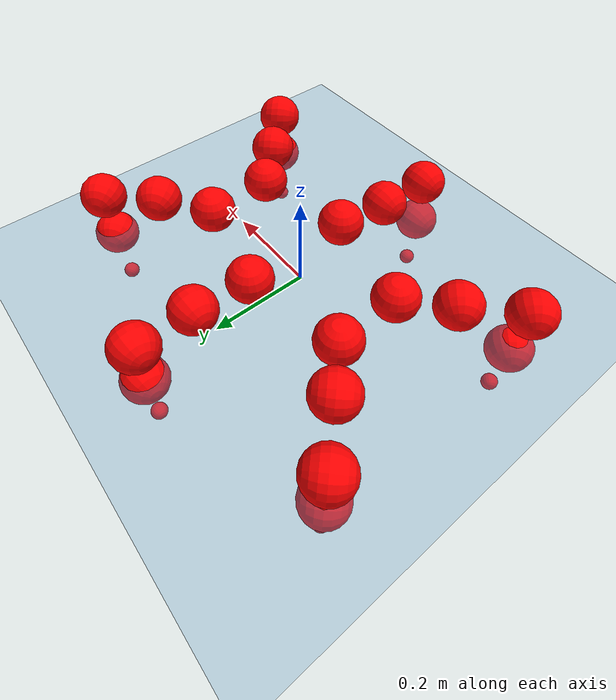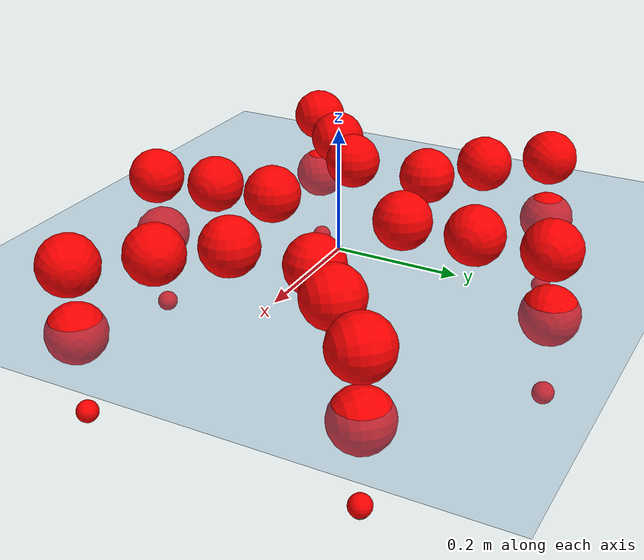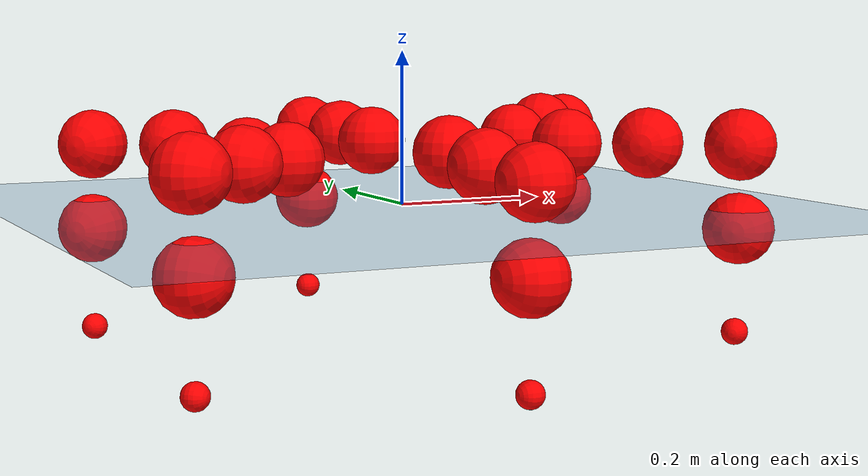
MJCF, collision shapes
<mujoco model="Golem">
  <compiler angle="radian" assetdir="assets" balanceinertia="true" inertiafromgeom="false"/>

  <option timestep="0.005" density="1.2" viscosity="2e-05"/>

  <size nkey="1"/>

  <visual>
    <quality shadowsize="8192"/>
    <map shadowclip="0.5"/>
  </visual>

  <default>
    <default class="/">
      <joint armature="0.01" damping="0.01" frictionloss="0.01"/>
      <geom contype="0" conaffinity="0" group="1" solref="-1000 -80"/>
      <site size="0.01 0.005 0.005" group="5"/>
      <general forcelimited="true" biastype="affine" gainprm="25" biasprm="0 -25 -0.5"/>
      <default class="visual">
        <geom type="mesh" group="2"/>
      </default>
      <default class="collision">
        <geom group="3"/>
      </default>
      <default class="foot">
        <geom size="0.01 0 0" condim="6" group="4" priority="1" solimp="0.015 1 0.01"/>
      </default>
      <default class="reward_collision_sphere">
        <geom group="5" rgba="1 0 0 1"/>
      </default>
    </default>
  </default>

  <asset>
    <texture type="skybox" colorspace="auto" name="//unnamed_texture_0" builtin="gradient" rgb1="0.95 0.95 0.95" rgb2="0.95 0.95 0.95" width="100" height="600"/>
    <texture type="2d" colorspace="auto" name="texplane" builtin="checker" rgb1="0.345 0.575 0.748" rgb2="0.345 0.575 0.748" markrgb="1 1 1" width="512" height="512"/>
    <material name="MatPlane" class="/" texture="texplane" texuniform="true" texrepeat="2 2" specular="0.9"/>
    <mesh name="body" class="/" file="body.stl" scale="0.001 0.001 0.001"/>
    <mesh name="coxa" class="/" file="coxa.stl" scale="0.001 0.001 0.001"/>
    <mesh name="femur" class="/" file="femur.stl" scale="0.001 0.001 0.001"/>
    <mesh name="tibia" class="/" file="tibia.stl" scale="0.001 0.001 0.001"/>
    <mesh name="tarsus" class="/" file="tarsus.stl" scale="0.001 0.001 0.001"/>
  </asset>

  <worldbody>
    <geom name="floor" class="/" size="100 100 0.125" type="plane" group="0" material="MatPlane"/>
    <light name="toplight_shadow" class="/" pos="0 0 5" dir="0.0990148 0.0990148 -0.990148" type="directional" ambient="0.04 0.04 0.04" diffuse="0.55 0.55 0.55" specular="0.12 0.12 0.12"/>
    <light name="toplight_fill" class="/" pos="0 0 5" dir="0.0990148 0.0990148 -0.990148" type="directional" castshadow="false" ambient="0.04 0.04 0.04" diffuse="0.3 0.3 0.3" specular="0.08 0.08 0.08"/>
    <body name="trunk" pos="0.00469028 0.00076524 0.00206438" quat="0.999992 0.00333521 -0.00214801 -0.000375457">
      <inertial pos="-0.00139822 -0.009139 -0.00884618" quat="0.999914 -0.0115434 -0.00619593 -0.000742827" mass="6.07292" diaginertia="0.0334765 0.0157143 0.0199243"/>
      <joint name="//unnamed_joint_0" type="free"/>
      <geom name="//unnamed_geom_1" class="/" pos="0 0 0.0720914" quat="1 0 0 0" type="mesh" rgba="0.9 0.9 0.9 1" mesh="body"/>
      <site name="imu" class="/" pos="0.155525 -0.0304335 0.122846" size="0.0115416"/>
      <camera name="track" class="/" pos="0 -2.1761 0" quat="0.707107 0.707107 0 0" mode="trackcom"/>
      <camera name="ego_camera" class="/" pos="0.16224 0 0.112643" quat="-0.5 -0.5 0.5 0.5"/>
      <body name="coxa_RR" pos="-0.218477 -0.0967355 0.0709689" quat="0.38108 -0.00278519 0.00011519 -0.924538">
        <inertial pos="-0.00358927 -0.00132783 -0.0015743" quat="0.998912 -0.00190175 0.0274392 -0.0376648" mass="0.249579" diaginertia="0.0276751 0.0138055 0.0164496"/>
        <joint name="coxa_joint_RR" class="/" pos="0 0 0" axis="-0.00281495 0.000243716 -0.999996" range="-3.12878 3.32296" armature="0.0064123" damping="0" frictionloss="0.0115159"/>
        <geom name="//unnamed_geom_2" class="/" type="mesh" rgba="0.2 0.2 0.2 1" mesh="coxa"/>
        <geom name="//unnamed_geom_3" class="reward_collision_sphere" size="0.0461663" pos="-0.0374399 0 0"/>
        <body name="femur_RR" pos="0.0723745 -0.00670463 0.00369331" quat="0.500533 -0.498695 0.500515 0.500256">
          <inertial pos="-0.00737392 -0.00120422 -0.00144759" quat="0.99939 -0.00401058 -0.0218232 -0.0269575" mass="0.310158" diaginertia="0.0302647 0.0152784 0.0184372"/>
          <joint name="femur_joint_RR" class="/" pos="0 0 0" axis="0.00606817 0.00450959 -0.999971" range="-3.19679 3.20706" armature="0.0112443" damping="0.0538241" frictionloss="0.0109029"/>
          <geom name="//unnamed_geom_4" class="/" type="mesh" rgba="0.9 0.9 0.9 1" mesh="femur"/>
          <geom name="//unnamed_geom_5" class="reward_collision_sphere" size="0.0461663"/>
          <body name="tibia_RR" pos="-0.00135159 -0.125612 -0.00302534" quat="0.000605092 0.999999 -0.00038539 -0.000939686">
            <inertial pos="0.00495649 0.00260866 0.00216526" quat="0.999981 -0.0031744 0.00509057 0.00150694" mass="0.275842" diaginertia="0.0303446 0.0150588 0.0172094"/>
            <joint name="tibia_joint_RR" class="/" pos="0 0 0" axis="0.0290531 0.00297595 0.999573" range="-3.12196 3.10696" armature="0.0111687" damping="0.017361" frictionloss="0.0124151"/>
            <geom name="//unnamed_geom_6" class="/" type="mesh" rgba="0.2 0.2 0.2 1" mesh="tibia"/>
            <geom name="//unnamed_geom_7" class="reward_collision_sphere" size="0.0461663"/>
            <body name="tarsus_RR" pos="0.11591 -0.00475668 6.76293e-05" quat="0.999999 0.000627646 0.000314303 0.00144255">
              <inertial pos="0.0799239 -0.00112877 0.00120091" quat="0.501988 0.497069 0.499161 0.501766" mass="0.277796" diaginertia="0.026876 0.0134373 0.0168347"/>
              <joint name="tarsus_joint_RR" class="/" pos="0 0 0" axis="-0.000815119 0.0119136 0.999929" stiffness="0.0116202" range="-3.12078 3.13273" armature="0.0126093" damping="0.0439933" frictionloss="0.0147278"/>
              <geom name="//unnamed_geom_8" class="/" type="mesh" rgba="0.9 0.9 0.9 1" mesh="tarsus"/>
              <geom name="foot_1" class="foot" size="0.0102363" pos="0.139776 0 0" quat="0 -0.707107 0 0.707107"/>
              <geom name="//unnamed_geom_10" class="reward_collision_sphere" size="0.0461663"/>
              <geom name="//unnamed_geom_11" class="reward_collision_sphere" size="0.0173124" pos="0.13416 0 0"/>
              <site name="foot_1" class="foot" pos="0.139776 0 0" quat="0 -0.707107 0 0.707107" size="0.0115416"/>
            </body>
          </body>
        </body>
      </body>
      <body name="coxa_RM" pos="0.00737895 -0.150685 0.0754755" quat="0.706981 -0.00015177 -2.80965e-05 -0.707233">
        <inertial pos="0.00703424 0.00215437 -0.00103453" quat="0.99997 0.00536318 0.00013822 -0.00551725" mass="0.278562" diaginertia="0.0280437 0.0134919 0.0168115"/>
        <joint name="coxa_joint_RM" class="/" pos="0 0 0" axis="0.00369005 -0.00543273 -0.999978" range="-3.24688 3.13249" armature="0.00871706" damping="0.00322288" frictionloss="0.0107287"/>
        <geom name="//unnamed_geom_12" class="/" type="mesh" rgba="0.2 0.2 0.2 1" mesh="coxa"/>
        <geom name="//unnamed_geom_13" class="reward_collision_sphere" size="0.0461663" pos="-0.0374399 0 0"/>
        <body name="femur_RM" pos="0.0762064 -0.00862312 -0.0071057" quat="0.499304 -0.499743 0.499834 0.501117">
          <inertial pos="0.00190806 0.00259195 -0.000733419" quat="0.999077 0.000952243 -0.00256897 0.0428578" mass="0.336203" diaginertia="0.0345022 0.0174397 0.0199799"/>
          <joint name="femur_joint_RM" class="/" pos="0 0 0" axis="0.000346026 0.00288392 -0.999996" range="-2.96185 3.12779" armature="0.0129142" damping="0.0169118" frictionloss="0.0116214"/>
          <geom name="//unnamed_geom_14" class="/" type="mesh" rgba="0.9 0.9 0.9 1" mesh="femur"/>
          <geom name="//unnamed_geom_15" class="reward_collision_sphere" size="0.0461663"/>
          <body name="tibia_RM" pos="0.00704308 -0.118938 0.000252102" quat="0.000430629 0.99999 -0.00421442 -0.00165781">
            <inertial pos="0.00426349 -0.000378933 -0.000691826" quat="0.999675 0.0124694 0.0133075 0.0178371" mass="0.306325" diaginertia="0.0287942 0.0161487 0.0196388"/>
            <joint name="tibia_joint_RM" class="/" pos="0 0 0" axis="0.000472971 0.000329427 1" stiffness="0.0370134" range="-3.14538 3.12212" armature="0.0104708" damping="0.0287774" frictionloss="0.0111447"/>
            <geom name="//unnamed_geom_16" class="/" type="mesh" rgba="0.2 0.2 0.2 1" mesh="tibia"/>
            <geom name="//unnamed_geom_17" class="reward_collision_sphere" size="0.0461663"/>
            <body name="tarsus_RM" pos="0.108753 4.24668e-05 0.00517474" quat="0.999994 -0.00191377 0.00298271 -0.0001388">
              <inertial pos="0.072756 0.00180018 0.000480963" quat="0.498794 0.500336 0.500017 0.500852" mass="0.312873" diaginertia="0.0297799 0.0155341 0.0172268"/>
              <joint name="tarsus_joint_RM" class="/" pos="0 0 0" axis="0.0266071 0.0162525 0.999514" range="-3.05366 2.95826" armature="0.0132887" damping="0.00447436" frictionloss="0.0167537"/>
              <geom name="//unnamed_geom_18" class="/" type="mesh" rgba="0.9 0.9 0.9 1" mesh="tarsus"/>
              <geom name="foot_2" class="foot" size="0.0117521" pos="0.139776 0 0" quat="0 -0.707107 0 0.707107"/>
              <geom name="//unnamed_geom_20" class="reward_collision_sphere" size="0.0461663"/>
              <geom name="//unnamed_geom_21" class="reward_collision_sphere" size="0.0173124" pos="0.13416 0 0"/>
              <site name="foot_2" class="foot" pos="0.139776 0 0" quat="0 -0.707107 0 0.707107" size="0.0115416"/>
            </body>
          </body>
        </body>
      </body>
      <body name="coxa_RF" pos="0.229123 -0.0962367 0.0750723" quat="0.923514 -0.00178137 0.00293377 -0.383549">
        <inertial pos="-0.00738484 -0.00764749 0.000334057" quat="0.999959 0.0035249 -0.0083343 -8.14693e-05" mass="0.31404" diaginertia="0.029867 0.0159093 0.018458"/>
        <joint name="coxa_joint_RF" class="/" pos="0 0 0" axis="0.000698468 -0.00692768 -0.999976" stiffness="0.045645" range="-3.17418 3.29297" armature="0.0119688" damping="0" frictionloss="0.0126973"/>
        <geom name="//unnamed_geom_22" class="/" type="mesh" rgba="0.2 0.2 0.2 1" mesh="coxa"/>
        <geom name="//unnamed_geom_23" class="reward_collision_sphere" size="0.0461663" pos="-0.0374399 0 0"/>
        <body name="femur_RF" pos="0.0706928 0.000223925 0.00412133" quat="0.498435 -0.500018 0.498807 0.502729">
          <inertial pos="0.000207347 0.00294768 -0.00853364" quat="0.999505 -0.0219007 0.00640005 -0.0216375" mass="0.324152" diaginertia="0.0336366 0.0168979 0.0219538"/>
          <joint name="femur_joint_RF" class="/" pos="0 0 0" axis="0.0407385 -0.01711 -0.999023" range="-3.17954 3.19445" armature="0.0059235" damping="0.0253527" frictionloss="0.00859801"/>
          <geom name="//unnamed_geom_24" class="/" type="mesh" rgba="0.9 0.9 0.9 1" mesh="femur"/>
          <geom name="//unnamed_geom_25" class="reward_collision_sphere" size="0.0461663"/>
          <body name="tibia_RF" pos="-0.0021556 -0.119379 0.000548649" quat="-0.00106761 0.999999 -0.000598307 0.000140006">
            <inertial pos="-0.00219743 0.000752334 -0.00154418" quat="0.999635 -0.0107329 -0.0094589 -0.0229192" mass="0.322358" diaginertia="0.0330131 0.0165628 0.0171049"/>
            <joint name="tibia_joint_RF" class="/" pos="0 0 0" axis="0.000115615 0.000827469 1" stiffness="0.0167119" range="-3.12948 2.98463" armature="0.0127292" damping="0.0133097" frictionloss="0.0113443"/>
            <geom name="//unnamed_geom_26" class="/" type="mesh" rgba="0.2 0.2 0.2 1" mesh="tibia"/>
            <geom name="//unnamed_geom_27" class="reward_collision_sphere" size="0.0461663"/>
            <body name="tarsus_RF" pos="0.107876 0.00023378 -0.00022577" quat="0.99999 -0.00218116 -0.00160737 -0.00342835">
              <inertial pos="0.0749609 -6.0184e-05 -0.000558254" quat="0.502928 0.503304 0.509086 0.484336" mass="0.318143" diaginertia="0.0318155 0.0154694 0.0205051"/>
              <joint name="tarsus_joint_RF" class="/" pos="0 0 0" axis="-0.000624524 -2.59831e-05 1" range="-3.12956 3.0949" armature="0.0117454" damping="0.0176761" frictionloss="0.00961604"/>
              <geom name="//unnamed_geom_28" class="/" type="mesh" rgba="0.9 0.9 0.9 1" mesh="tarsus"/>
              <geom name="foot_3" class="foot" size="0.00856904" pos="0.139776 0 0" quat="0 -0.707107 0 0.707107"/>
              <geom name="//unnamed_geom_30" class="reward_collision_sphere" size="0.0461663"/>
              <geom name="//unnamed_geom_31" class="reward_collision_sphere" size="0.0173124" pos="0.13416 0 0"/>
              <site name="foot_3" class="foot" pos="0.139776 0 0" quat="0 -0.707107 0 0.707107" size="0.0115416"/>
            </body>
          </body>
        </body>
      </body>
      <body name="coxa_LR" pos="-0.221024 0.0936952 0.0676021" quat="0.380905 0.00240801 -0.00138995 0.92461">
        <inertial pos="-4.49359e-05 -0.00216194 5.85131e-05" quat="0.999968 -0.000799018 -0.0070443 0.00381043" mass="0.320787" diaginertia="0.0333831 0.0159484 0.0205821"/>
        <joint name="coxa_joint_LR" class="/" pos="0 0 0" axis="0.0283023 0.0157437 -0.999475" stiffness="0.00505103" range="-3.25768 3.14297" armature="0.0124456" damping="0" frictionloss="0.0122968"/>
        <geom name="//unnamed_geom_32" class="/" type="mesh" rgba="0.2 0.2 0.2 1" mesh="coxa"/>
        <geom name="//unnamed_geom_33" class="reward_collision_sphere" size="0.0461663" pos="-0.0374399 0 0"/>
        <body name="femur_LR" pos="0.0671398 0.000854087 0.00762188" quat="0.499908 -0.499816 0.500227 0.500049">
          <inertial pos="0.00134284 -0.00206094 -0.0021709" quat="0.999985 -0.00108505 0.000369287 -0.00543395" mass="0.305464" diaginertia="0.0294431 0.015743 0.017385"/>
          <joint name="femur_joint_LR" class="/" pos="0 0 0" axis="-0.00591194 0.00892389 0.999943" stiffness="0.0217553" range="-2.99801 3.0009" armature="0.0113592" damping="0.0412302" frictionloss="0.0114293"/>
          <geom name="//unnamed_geom_34" class="/" type="mesh" rgba="0.9 0.9 0.9 1" mesh="femur"/>
          <geom name="//unnamed_geom_35" class="reward_collision_sphere" size="0.0461663"/>
          <body name="tibia_LR" pos="0.00385688 -0.122712 -0.00125974" quat="0.000102403 1 0.000156905 -2.40098e-05">
            <inertial pos="0.00891706 9.47994e-05 0.00759622" quat="0.999958 0.000332397 -0.00600242 0.00696768" mass="0.307083" diaginertia="0.0300578 0.0136885 0.0185729"/>
            <joint name="tibia_joint_LR" class="/" pos="0 0 0" axis="0.00757994 0.00301065 -0.999967" stiffness="0.0191912" range="-3.29039 3.03266" armature="0.0129057" damping="0" frictionloss="0.0118787"/>
            <geom name="//unnamed_geom_36" class="/" type="mesh" rgba="0.2 0.2 0.2 1" mesh="tibia"/>
            <geom name="//unnamed_geom_37" class="reward_collision_sphere" size="0.0461663"/>
            <body name="tarsus_LR" pos="0.113761 0.00262364 0.000310097" quat="1 8.82308e-05 0.000389252 -0.000236681">
              <inertial pos="0.0752187 0.00108706 0.000312579" quat="0.492447 0.506615 0.498861 0.501971" mass="0.286831" diaginertia="0.0286013 0.0132315 0.0165721"/>
              <joint name="tarsus_joint_LR" class="/" pos="0 0 0" axis="-0.0293169 0.0251343 -0.999254" range="-3.17475 3.24451" armature="0.0107068" damping="0.019339" frictionloss="0.00856344"/>
              <geom name="//unnamed_geom_38" class="/" type="mesh" rgba="0.9 0.9 0.9 1" mesh="tarsus"/>
              <geom name="foot_4" class="foot" size="0.0116476" pos="0.139776 0 0" quat="0.707107 0 -0.707107 0"/>
              <geom name="//unnamed_geom_40" class="reward_collision_sphere" size="0.0461663"/>
              <geom name="//unnamed_geom_41" class="reward_collision_sphere" size="0.0173124" pos="0.13416 0 0"/>
              <site name="foot_4" class="foot" pos="0.139776 0 0" quat="0.707107 0 -0.707107 0" size="0.0115416"/>
            </body>
          </body>
        </body>
      </body>
      <body name="coxa_LM" pos="0.00194077 0.149629 0.0728244" quat="0.70672 0.000187738 0.00038306 0.707494">
        <inertial pos="-0.00744708 -0.00865962 -3.63506e-06" quat="1 -2.73558e-05 1.66151e-05 -2.40613e-06" mass="0.309116" diaginertia="0.0305135 0.0153269 0.0183486"/>
        <joint name="coxa_joint_LM" class="/" pos="0 0 0" axis="0.00557124 -0.00090622 -0.999984" stiffness="0.0247385" range="-3.20634 3.20701" armature="0.00778459" damping="0.0436935" frictionloss="0.00973546"/>
        <geom name="//unnamed_geom_42" class="/" type="mesh" rgba="0.2 0.2 0.2 1" mesh="coxa"/>
        <geom name="//unnamed_geom_43" class="reward_collision_sphere" size="0.0461663" pos="-0.0374399 0 0"/>
        <body name="femur_LM" pos="0.080953 -0.00396063 0.00188085" quat="0.500677 -0.502577 0.499895 0.496834">
          <inertial pos="0.00398679 -0.00318199 -0.00167538" quat="0.999649 0.00915404 -0.0240676 0.00617788" mass="0.309742" diaginertia="0.028511 0.0161554 0.0184597"/>
          <joint name="femur_joint_LM" class="/" pos="0 0 0" axis="-0.000513963 0.00125421 0.999999" range="-3.15899 3.14536" armature="0.016605" damping="0.0349575" frictionloss="0.0127881"/>
          <geom name="//unnamed_geom_44" class="/" type="mesh" rgba="0.9 0.9 0.9 1" mesh="femur"/>
          <geom name="//unnamed_geom_45" class="reward_collision_sphere" size="0.0461663"/>
          <body name="tibia_LM" pos="0.00090975 -0.116114 0.00476863" quat="0.000627393 1 0.000609128 -8.68058e-05">
            <inertial pos="-0.000176173 -0.00672235 -0.002006" quat="0.999998 0.000228821 -0.00099722 0.00154423" mass="0.323471" diaginertia="0.0318379 0.0147092 0.0169848"/>
            <joint name="tibia_joint_LM" class="/" pos="0 0 0" axis="0.00313621 0.0165736 -0.999858" range="-3.12916 3.04365" armature="0.0113677" damping="0.0364619" frictionloss="0.0134854"/>
            <geom name="//unnamed_geom_46" class="/" type="mesh" rgba="0.2 0.2 0.2 1" mesh="tibia"/>
            <geom name="//unnamed_geom_47" class="reward_collision_sphere" size="0.0461663"/>
            <body name="tarsus_LM" pos="0.105009 0.00415258 -1.62853e-05" quat="1 -6.35526e-05 -0.00011473 0.000120637">
              <inertial pos="0.0727256 0.000973648 0.000926977" quat="0.493144 0.501401 0.495455 0.509834" mass="0.250395" diaginertia="0.0270193 0.0143095 0.0179411"/>
              <joint name="tarsus_joint_LM" class="/" pos="0 0 0" axis="-0.000111157 -0.0070315 -0.999975" range="-3.13319 3.22416" armature="0.0103755" damping="0" frictionloss="0.0117126"/>
              <geom name="//unnamed_geom_48" class="/" type="mesh" rgba="0.9 0.9 0.9 1" mesh="tarsus"/>
              <geom name="foot_5" class="foot" size="0.0114971" pos="0.139776 0 0" quat="0.707107 0 -0.707107 0"/>
              <geom name="//unnamed_geom_50" class="reward_collision_sphere" size="0.0461663"/>
              <geom name="//unnamed_geom_51" class="reward_collision_sphere" size="0.0173124" pos="0.13416 0 0"/>
              <site name="foot_5" class="foot" pos="0.139776 0 0" quat="0.707107 0 -0.707107 0" size="0.0115416"/>
            </body>
          </body>
        </body>
      </body>
      <body name="coxa_LF" pos="0.223389 0.093788 0.0737619" quat="0.923898 -4.68818e-05 -1.81115e-05 0.382638">
        <inertial pos="0.000541959 0.00077045 0.000266816" quat="0.999999 0.000666177 1.36561e-06 -0.0014848" mass="0.325843" diaginertia="0.0314653 0.0149638 0.0175732"/>
        <joint name="coxa_joint_LF" class="/" pos="0 0 0" axis="0.00326699 0.0399873 -0.999195" stiffness="0.00401735" range="-3.09402 3.17225" armature="0.0112395" damping="0.0149404" frictionloss="0.0119129"/>
        <geom name="//unnamed_geom_52" class="/" type="mesh" rgba="0.2 0.2 0.2 1" mesh="coxa"/>
        <geom name="//unnamed_geom_53" class="reward_collision_sphere" size="0.0461663" pos="-0.0374399 0 0"/>
        <body name="femur_LF" pos="0.0760885 -0.00883312 0.00923003" quat="0.500311 -0.499766 0.499872 0.500051">
          <inertial pos="0.00631527 -0.00177181 -0.000426079" quat="0.999959 -0.00751349 0.000953147 0.0050077" mass="0.29979" diaginertia="0.0311148 0.016859 0.0196058"/>
          <joint name="femur_joint_LF" class="/" pos="0 0 0" axis="0.00609783 0.0297154 0.99954" range="-3.14956 3.28241" armature="0.0147134" damping="0.016747" frictionloss="0.0122046"/>
          <geom name="//unnamed_geom_54" class="/" type="mesh" rgba="0.9 0.9 0.9 1" mesh="femur"/>
          <geom name="//unnamed_geom_55" class="reward_collision_sphere" size="0.0461663"/>
          <body name="tibia_LF" pos="0.00758171 -0.119959 -0.00191322" quat="-6.06014e-05 1 -0.00014365 0.000142871">
            <inertial pos="-1.47964e-05 -0.00191234 0.00178279" quat="0.999336 0.0144184 0.0196585 0.0270899" mass="0.3173" diaginertia="0.0305428 0.0153835 0.0176649"/>
            <joint name="tibia_joint_LF" class="/" pos="0 0 0" axis="3.74437e-05 -6.3168e-05 -1" range="-3.10605 3.19122" armature="0.0168002" damping="0.0362226" frictionloss="0.0118936"/>
            <geom name="//unnamed_geom_56" class="/" type="mesh" rgba="0.2 0.2 0.2 1" mesh="tibia"/>
            <geom name="//unnamed_geom_57" class="reward_collision_sphere" size="0.0461663"/>
            <body name="tarsus_LF" pos="0.106934 -0.0016904 -0.00162195" quat="0.99999 -0.00171385 -0.0041893 0.000261761">
              <inertial pos="0.0694899 0.00693469 0.00216745" quat="0.498586 0.496548 0.508714 0.496047" mass="0.336496" diaginertia="0.0321384 0.0161985 0.0189514"/>
              <joint name="tarsus_joint_LF" class="/" pos="0 0 0" axis="0.0106713 -0.0318168 -0.999437" stiffness="0.00617895" range="-3.26776 3.18109" armature="0.0125578" damping="0" frictionloss="0.0105966"/>
              <geom name="//unnamed_geom_58" class="/" type="mesh" rgba="0.9 0.9 0.9 1" mesh="tarsus"/>
              <geom name="foot_6" class="foot" size="0.0139332" pos="0.139776 0 0" quat="0.707107 0 -0.707107 0"/>
              <geom name="//unnamed_geom_60" class="reward_collision_sphere" size="0.0461663"/>
              <geom name="//unnamed_geom_61" class="reward_collision_sphere" size="0.0173124" pos="0.13416 0 0"/>
              <site name="foot_6" class="foot" pos="0.139776 0 0" quat="0.707107 0 -0.707107 0" size="0.0115416"/>
            </body>
          </body>
        </body>
      </body>
    </body>
  </worldbody>

  <contact>
    <pair class="/" geom1="floor" geom2="foot_1" name="//unnamed_contact_0"/>
    <pair class="/" geom1="floor" geom2="foot_2" name="//unnamed_contact_1"/>
    <pair class="/" geom1="floor" geom2="foot_3" name="//unnamed_contact_2"/>
    <pair class="/" geom1="floor" geom2="foot_4" name="//unnamed_contact_3"/>
    <pair class="/" geom1="floor" geom2="foot_5" name="//unnamed_contact_4"/>
    <pair class="/" geom1="floor" geom2="foot_6" name="//unnamed_contact_5"/>
  </contact>

  <actuator>
    <general name="coxa_joint_RR" class="/" joint="coxa_joint_RR" forcerange="-9.10316 9.10316" gainprm="25.7509" biasprm="0 -25.7509 -0.607001"/>
    <general name="femur_joint_RR" class="/" joint="femur_joint_RR" forcerange="-8.39338 8.39338" gainprm="25.7509" biasprm="0 -25.7509 -0.607001"/>
    <general name="tibia_joint_RR" class="/" joint="tibia_joint_RR" forcerange="-9.05318 9.05318" gainprm="25.7509" biasprm="0 -25.7509 -0.607001"/>
    <general name="tarsus_joint_RR" class="/" joint="tarsus_joint_RR" forcerange="-8.25814 8.25814" gainprm="25.7509" biasprm="0 -25.7509 -0.607001"/>
    <general name="coxa_joint_RM" class="/" joint="coxa_joint_RM" forcerange="-8.37122 8.37122" gainprm="25.7509" biasprm="0 -25.7509 -0.607001"/>
    <general name="femur_joint_RM" class="/" joint="femur_joint_RM" forcerange="-10.1118 10.1118" gainprm="25.7509" biasprm="0 -25.7509 -0.607001"/>
    <general name="tibia_joint_RM" class="/" joint="tibia_joint_RM" forcerange="-8.31914 8.31914" gainprm="25.7509" biasprm="0 -25.7509 -0.607001"/>
    <general name="tarsus_joint_RM" class="/" joint="tarsus_joint_RM" forcerange="-8.28997 8.28997" gainprm="25.7509" biasprm="0 -25.7509 -0.607001"/>
    <general name="coxa_joint_RF" class="/" joint="coxa_joint_RF" forcerange="-10.2876 10.2876" gainprm="25.7509" biasprm="0 -25.7509 -0.607001"/>
    <general name="femur_joint_RF" class="/" joint="femur_joint_RF" forcerange="-9.96333 9.96333" gainprm="25.7509" biasprm="0 -25.7509 -0.607001"/>
    <general name="tibia_joint_RF" class="/" joint="tibia_joint_RF" forcerange="-7.02105 7.02105" gainprm="25.7509" biasprm="0 -25.7509 -0.607001"/>
    <general name="tarsus_joint_RF" class="/" joint="tarsus_joint_RF" forcerange="-7.99969 7.99969" gainprm="25.7509" biasprm="0 -25.7509 -0.607001"/>
    <general name="coxa_joint_LR" class="/" joint="coxa_joint_LR" forcerange="-7.77538 7.77538" gainprm="25.7509" biasprm="0 -25.7509 -0.607001"/>
    <general name="femur_joint_LR" class="/" joint="femur_joint_LR" forcerange="-9.21747 9.21747" gainprm="25.7509" biasprm="0 -25.7509 -0.607001"/>
    <general name="tibia_joint_LR" class="/" joint="tibia_joint_LR" forcerange="-10.8842 10.8842" gainprm="25.7509" biasprm="0 -25.7509 -0.607001"/>
    <general name="tarsus_joint_LR" class="/" joint="tarsus_joint_LR" forcerange="-5.73629 5.73629" gainprm="25.7509" biasprm="0 -25.7509 -0.607001"/>
    <general name="coxa_joint_LM" class="/" joint="coxa_joint_LM" forcerange="-7.75021 7.75021" gainprm="25.7509" biasprm="0 -25.7509 -0.607001"/>
    <general name="femur_joint_LM" class="/" joint="femur_joint_LM" forcerange="-8.60558 8.60558" gainprm="25.7509" biasprm="0 -25.7509 -0.607001"/>
    <general name="tibia_joint_LM" class="/" joint="tibia_joint_LM" forcerange="-8.61617 8.61617" gainprm="25.7509" biasprm="0 -25.7509 -0.607001"/>
    <general name="tarsus_joint_LM" class="/" joint="tarsus_joint_LM" forcerange="-8.73887 8.73887" gainprm="25.7509" biasprm="0 -25.7509 -0.607001"/>
    <general name="coxa_joint_LF" class="/" joint="coxa_joint_LF" forcerange="-8.54509 8.54509" gainprm="25.7509" biasprm="0 -25.7509 -0.607001"/>
    <general name="femur_joint_LF" class="/" joint="femur_joint_LF" forcerange="-8.3213 8.3213" gainprm="25.7509" biasprm="0 -25.7509 -0.607001"/>
    <general name="tibia_joint_LF" class="/" joint="tibia_joint_LF" forcerange="-8.29704 8.29704" gainprm="25.7509" biasprm="0 -25.7509 -0.607001"/>
    <general name="tarsus_joint_LF" class="/" joint="tarsus_joint_LF" forcerange="-7.74177 7.74177" gainprm="25.7509" biasprm="0 -25.7509 -0.607001"/>
  </actuator>

  <sensor>
    <gyro site="imu" name="imu_angular_velocity"/>
    <velocimeter site="imu" name="imu_linear_velocity"/>
    <framelinvel objtype="site" objname="foot_1" name="foot_1_global_linear_velocity"/>
    <framelinvel objtype="site" objname="foot_2" name="foot_2_global_linear_velocity"/>
    <framelinvel objtype="site" objname="foot_3" name="foot_3_global_linear_velocity"/>
    <framelinvel objtype="site" objname="foot_4" name="foot_4_global_linear_velocity"/>
    <framelinvel objtype="site" objname="foot_5" name="foot_5_global_linear_velocity"/>
    <framelinvel objtype="site" objname="foot_6" name="foot_6_global_linear_velocity"/>
  </sensor>

  <keyframe>
    <key name="home" qpos="0 0 0.1457 1 0 0 0 0 0 0 0 0 0 0 0 0 0 0 0 0 0 0 0 0 0 0 0 0 0 0 0"/>
  </keyframe>
</mujoco>
